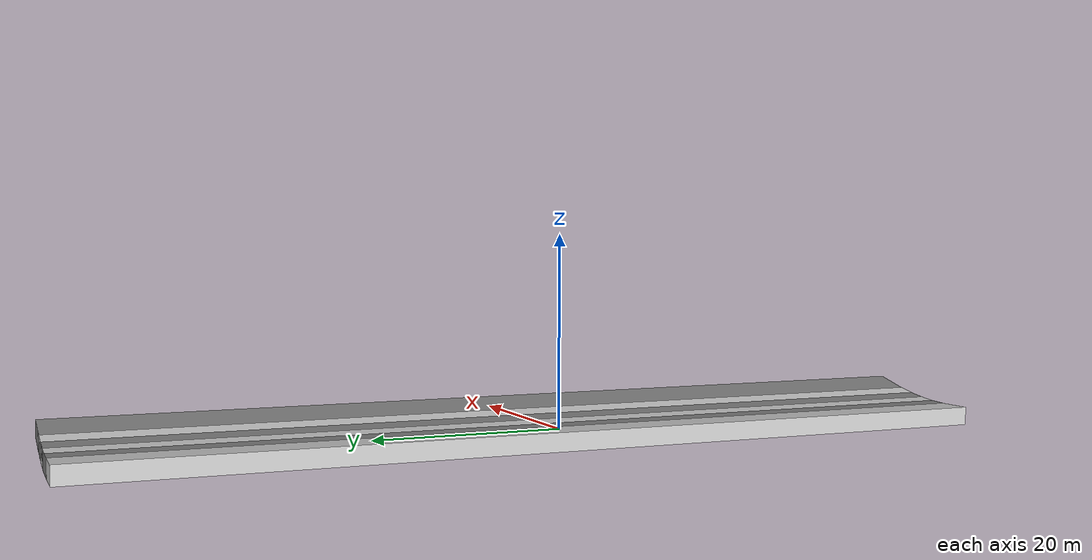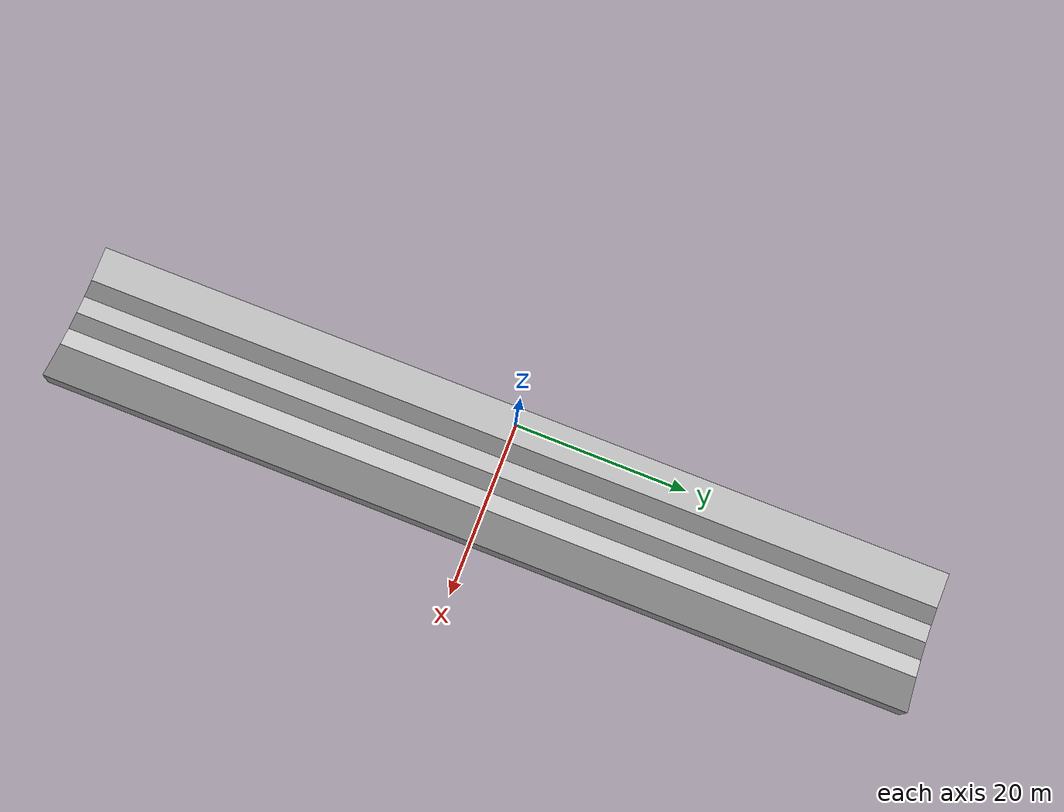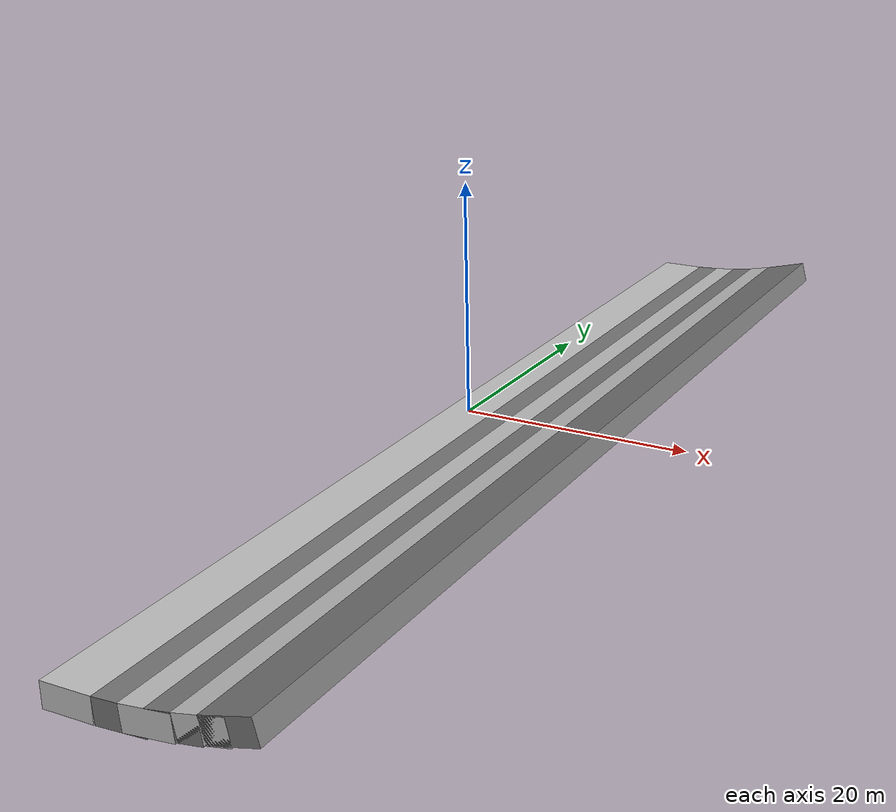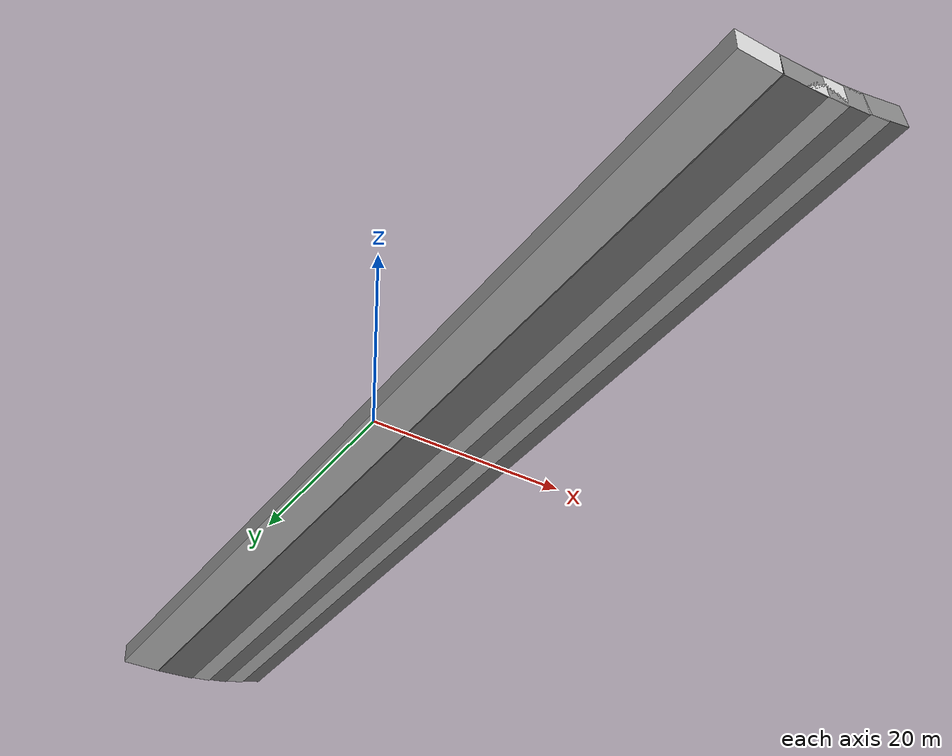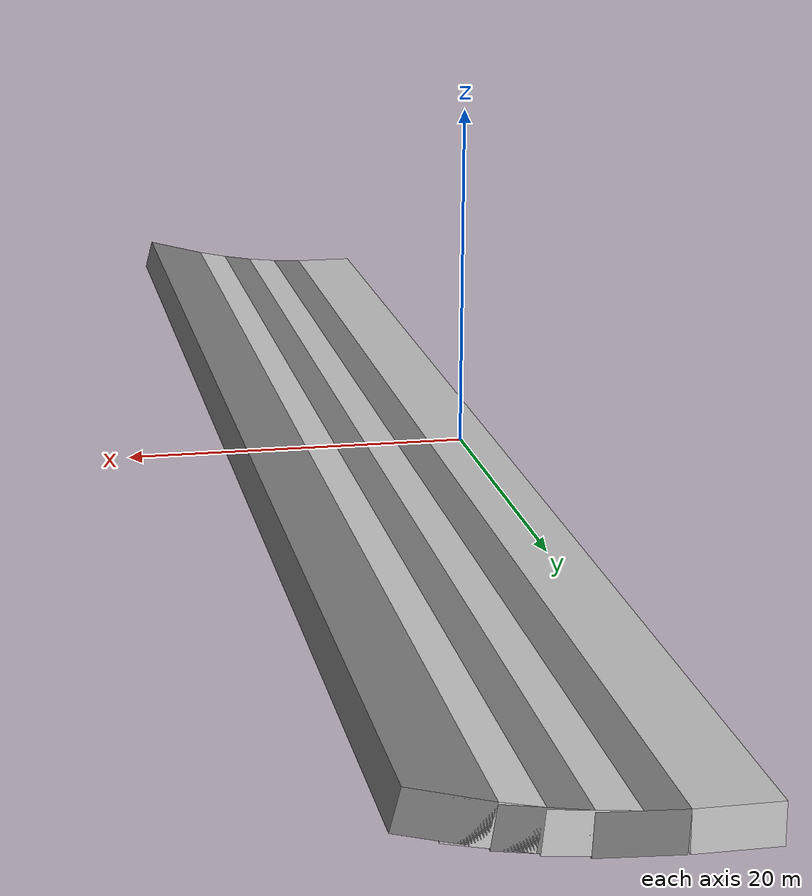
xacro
<?xml version="1.0" encoding="utf-8"?>
<robot name="ground_plane" xmlns:xacro="http://www.ros.org/wiki/xacro">

    <xacro:property name="length" default="4"/>
    <xacro:property name="width" default="100"/>

    <xacro:property name="roll"  default="0"/>
    <xacro:property name="pitch" default="0"/>
    <xacro:property name="yaw"   default="0"/>

    <xacro:property name="pitch_increase" default="-0.05"/>

    <xacro:property name="x" default="0"/>
    <xacro:property name="y" default="0"/>
    <xacro:property name="z" default="-1"/>

    <xacro:macro name="link" params="id">
        <joint name="ground_plane_link_${id-1}_to_ground_plane_link_${id}" type="fixed">
            <xacro:if value="${id - 1 == 1}">
                <parent link="ground_plane_link"/>
            </xacro:if>
            <xacro:if value="${id - 1 != 1}">
                <parent link="ground_plane_link_${id-1}"/>
            </xacro:if>
            <xacro:if value="${id == 1}">
                <child link="ground_plane_link"/>
            </xacro:if>
            <xacro:if value="${id != 1}">
                <child link="ground_plane_link_${id}"/>
            </xacro:if>
            <origin xyz="${length/2} 0 0" rpy="${roll} ${pitch_increase} ${yaw}"></origin>
        </joint>
        <link name="ground_plane_link_${id}">
            <visual>
                <origin rpy="${roll} ${pitch} ${yaw}" xyz="${length/2} ${y} ${z}"/>
                <geometry>
                    <box size="${length} ${width} 2"/>
                </geometry>

                <xacro:if value="${id % 2 == 0}">
                    <material name="dark_grey">
                        <color rgba="0.5 0.5 0.5 1.0"/>
                    </material>
                </xacro:if>
                <xacro:if value="${id % 2 != 0}">
                    <material name="grey">
                        <color rgba="0.8 0.8 0.8 1.0"/>
                    </material>
                </xacro:if>

            </visual>
            <collision>
                <origin rpy="${roll} ${pitch} ${yaw}" xyz="${length/2} ${y} ${z}"/>
                <geometry>
                    <box size="${length} ${width} 2"/>
                </geometry>
            </collision>
            <inertial>
                <origin rpy="0 0 0" xyz="0 0 0"/>
                <mass value="1"/>
                <inertia ixx="1" ixy="0" ixz="0" iyy="1" iyz="0" izz="1"/>
            </inertial>
        </link>

        <gazebo reference="ground_plane_link_${id-1}_to_ground_plane_link_${id}">
            <preserveFixedJoint>true</preserveFixedJoint>
        </gazebo>

        <gazebo reference="ground_plane_link_${id}">
            <xacro:if value="${id % 2 == 0}">
                <material>Gazebo/DarkGrey</material>
            </xacro:if>
            <xacro:if value="${id % 2 != 0}">
                <material>Gazebo/Grey</material>
            </xacro:if>
            <kp>1e6</kp>
            <kd>1e2</kd>
        </gazebo>
    </xacro:macro>

    <gazebo>
        <static>true</static>
    </gazebo>

    <link name="ground_plane_link">
        <visual>
            <origin rpy="${roll} ${pitch} ${yaw}" xyz="${x} ${y} ${z}"/>
            <geometry>
                <box size="${length} ${width} 2"/>
            </geometry>

            <material name="grey">
                <color rgba="0.8 0.8 0.8 1.0"/>
            </material>
        </visual>
        <collision>
            <origin rpy="${roll} ${pitch} ${yaw}" xyz="${x} ${y} ${z}"/>
            <geometry>
                <box size="${length} ${width} 2"/>
            </geometry>
        </collision>
        <inertial>
            <origin rpy="0 0 0" xyz="0 0 0"/>
            <mass value="1"/>
            <inertia ixx="1" ixy="0" ixz="0" iyy="1" iyz="0" izz="1"/>
        </inertial>
    </link>
    <xacro:link id="2"/>
    <xacro:link id="3"/>
    <xacro:link id="4"/>
    <xacro:link id="5"/>
    <xacro:link id="6"/>

    <joint name="ground_plane_link_to_ground_plane_link_inertia" type="fixed">
        <parent link="ground_plane_link"/>
        <child link="ground_plane_link_inertia"/>
    </joint>
    <link name="ground_plane_link_inertia">
        <inertial>
            <origin rpy="0 0 0" xyz="0 0 0"/>
            <mass value="1"/>
            <inertia ixx="1" ixy="0" ixz="0" iyy="1" iyz="0" izz="1"/>
        </inertial>
    </link>

    <gazebo reference="ground_plane_link">
        <material>Gazebo/Grey</material>
        <kp>1e6</kp>
        <kd>1e2</kd>
    </gazebo>

</robot>
